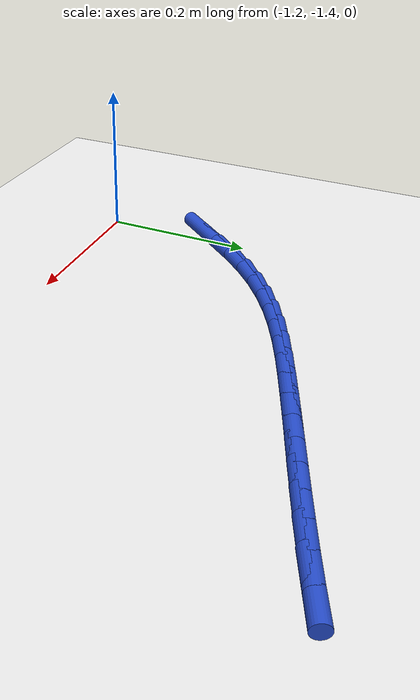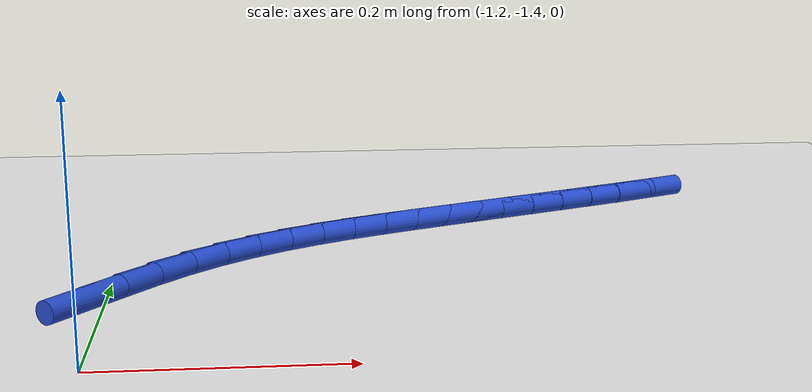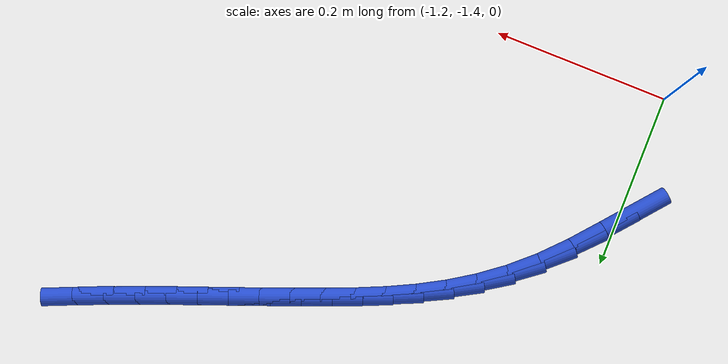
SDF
<sdf version="1.6">
 <world name="default">
  <model name="ground_plane">
   <static>1</static>
   <link name="link">
    <collision name="collision">
     <geometry><plane><normal>0 0 1</normal><size>100 100</size></plane></geometry>
     <surface><friction><ode><mu>100</mu><mu2>50</mu2></ode></friction></surface>
    </collision>
    <visual name="visual">
     <cast_shadows>0</cast_shadows>
     <geometry><plane><normal>0 0 1</normal><size>100 100</size></plane></geometry>
     <material>
      <script><uri>file://media/materials/scripts/gazebo.material</uri><name>Gazebo/WhiteGlow</name></script>
     </material>
    </visual>
   </link>
  </model>
  <model name="line">
   <link name="link_166">
    <pose>-1.2140022616418102 -1.2667199999286067 0.01 0 1.57 0.8853947982379706</pose>
    <collision name="collision">
     <geometry><cylinder><radius>0.01</radius><length>0.08</length></cylinder></geometry>
    </collision>
    <visual name="visual">
     <material>
      <script><name>Gazebo/Blue</name><uri>file://media/materials/scripts/gazebo.material</uri></script>
     </material>
     <geometry><cylinder><radius>0.01</radius><length>0.08</length></cylinder></geometry>
    </visual>
   </link>
   <link name="link_167">
    <pose>-1.1888454822438321 -1.235952240339306 0.01 0 1.57 0.8763174824492425</pose>
    <collision name="collision">
     <geometry><cylinder><radius>0.01</radius><length>0.08</length></cylinder></geometry>
    </collision>
    <visual name="visual">
     <material>
      <script><name>Gazebo/Blue</name><uri>file://media/materials/scripts/gazebo.material</uri></script>
     </material>
     <geometry><cylinder><radius>0.01</radius><length>0.08</length></cylinder></geometry>
    </visual>
   </link>
   <link name="link_168">
    <pose>-1.1630428880034756 -1.204972788767967 0.01 0 1.57 0.8236120390936726</pose>
    <collision name="collision">
     <geometry><cylinder><radius>0.01</radius><length>0.08</length></cylinder></geometry>
    </collision>
    <visual name="visual">
     <material>
      <script><name>Gazebo/Blue</name><uri>file://media/materials/scripts/gazebo.material</uri></script>
     </material>
     <geometry><cylinder><radius>0.01</radius><length>0.08</length></cylinder></geometry>
    </visual>
   </link>
   <link name="link_169">
    <pose>-1.1364889005108554 -1.1763076361749984 0.01 0 1.57 0.7419146138091145</pose>
    <collision name="collision">
     <geometry><cylinder><radius>0.01</radius><length>0.08</length></cylinder></geometry>
    </collision>
    <visual name="visual">
     <material>
      <script><name>Gazebo/Blue</name><uri>file://media/materials/scripts/gazebo.material</uri></script>
     </material>
     <geometry><cylinder><radius>0.01</radius><length>0.08</length></cylinder></geometry>
    </visual>
   </link>
   <link name="link_170">
    <pose>-1.109147253812339 -1.1512461030214207 0.01 0 1.57 0.6608980478980852</pose>
    <collision name="collision">
     <geometry><cylinder><radius>0.01</radius><length>0.08</length></cylinder></geometry>
    </collision>
    <visual name="visual">
     <material>
      <script><name>Gazebo/Blue</name><uri>file://media/materials/scripts/gazebo.material</uri></script>
     </material>
     <geometry><cylinder><radius>0.01</radius><length>0.08</length></cylinder></geometry>
    </visual>
   </link>
   <link name="link_171">
    <pose>-1.0810746706113463 -1.1294184092951491 0.01 0 1.57 0.5860679000529868</pose>
    <collision name="collision">
     <geometry><cylinder><radius>0.01</radius><length>0.08</length></cylinder></geometry>
    </collision>
    <visual name="visual">
     <material>
      <script><name>Gazebo/Blue</name><uri>file://media/materials/scripts/gazebo.material</uri></script>
     </material>
     <geometry><cylinder><radius>0.01</radius><length>0.08</length></cylinder></geometry>
    </visual>
   </link>
   <link name="link_172">
    <pose>-1.0523343940074121 -1.110338438297233 0.01 0 1.57 0.5204283445614308</pose>
    <collision name="collision">
     <geometry><cylinder><radius>0.01</radius><length>0.08</length></cylinder></geometry>
    </collision>
    <visual name="visual">
     <material>
      <script><name>Gazebo/Blue</name><uri>file://media/materials/scripts/gazebo.material</uri></script>
     </material>
     <geometry><cylinder><radius>0.01</radius><length>0.08</length></cylinder></geometry>
    </visual>
   </link>
   <link name="link_173">
    <pose>-1.0229896671000716 -1.093520073328721 0.01 0 1.57 0.4663184286745634</pose>
    <collision name="collision">
     <geometry><cylinder><radius>0.01</radius><length>0.08</length></cylinder></geometry>
    </collision>
    <visual name="visual">
     <material>
      <script><name>Gazebo/Blue</name><uri>file://media/materials/scripts/gazebo.material</uri></script>
     </material>
     <geometry><cylinder><radius>0.01</radius><length>0.08</length></cylinder></geometry>
    </visual>
   </link>
   <link name="link_174">
    <pose>-0.9931037329888611 -1.0784771976906622 0.01 0 1.57 0.42530922916286074</pose>
    <collision name="collision">
     <geometry><cylinder><radius>0.01</radius><length>0.08</length></cylinder></geometry>
    </collision>
    <visual name="visual">
     <material>
      <script><name>Gazebo/Blue</name><uri>file://media/materials/scripts/gazebo.material</uri></script>
     </material>
     <geometry><cylinder><radius>0.01</radius><length>0.08</length></cylinder></geometry>
    </visual>
   </link>
   <link name="link_175">
    <pose>-0.9627398347733147 -1.064723694684105 0.01 0 1.57 0.39826930732990257</pose>
    <collision name="collision">
     <geometry><cylinder><radius>0.01</radius><length>0.08</length></cylinder></geometry>
    </collision>
    <visual name="visual">
     <material>
      <script><name>Gazebo/Blue</name><uri>file://media/materials/scripts/gazebo.material</uri></script>
     </material>
     <geometry><cylinder><radius>0.01</radius><length>0.08</length></cylinder></geometry>
    </visual>
   </link>
   <link name="link_176">
    <pose>-0.9319612155529684 -1.0517734476100993 0.01 0 1.57 0.38472075949433665</pose>
    <collision name="collision">
     <geometry><cylinder><radius>0.01</radius><length>0.08</length></cylinder></geometry>
    </collision>
    <visual name="visual">
     <material>
      <script><name>Gazebo/Blue</name><uri>file://media/materials/scripts/gazebo.material</uri></script>
     </material>
     <geometry><cylinder><radius>0.01</radius><length>0.08</length></cylinder></geometry>
    </visual>
   </link>
   <link name="link_177">
    <pose>-0.9008310707916377 -1.0391689463942764 0.01 0 1.57 0.3777973892482894</pose>
    <collision name="collision">
     <geometry><cylinder><radius>0.01</radius><length>0.08</length></cylinder></geometry>
    </collision>
    <visual name="visual">
     <material>
      <script><name>Gazebo/Blue</name><uri>file://media/materials/scripts/gazebo.material</uri></script>
     </material>
     <geometry><cylinder><radius>0.01</radius><length>0.08</length></cylinder></geometry>
    </visual>
   </link>
   <link name="link_178">
    <pose>-0.8694121840900965 -1.02670001660948 0.01 0 1.57 0.3739199092124492</pose>
    <collision name="collision">
     <geometry><cylinder><radius>0.01</radius><length>0.08</length></cylinder></geometry>
    </collision>
    <visual name="visual">
     <material>
      <script><name>Gazebo/Blue</name><uri>file://media/materials/scripts/gazebo.material</uri></script>
     </material>
     <geometry><cylinder><radius>0.01</radius><length>0.08</length></cylinder></geometry>
    </visual>
   </link>
   <link name="link_179">
    <pose>-0.8377671281410657 -1.0142831402053145 0.01 0 1.57 0.37299999585043186</pose>
    <collision name="collision">
     <geometry><cylinder><radius>0.01</radius><length>0.08</length></cylinder></geometry>
    </collision>
    <visual name="visual">
     <material>
      <script><name>Gazebo/Blue</name><uri>file://media/materials/scripts/gazebo.material</uri></script>
     </material>
     <geometry><cylinder><radius>0.01</radius><length>0.08</length></cylinder></geometry>
    </visual>
   </link>
   <link name="link_180">
    <pose>-0.805958473928473 -1.0018358253093311 0.01 0 1.57 0.3749931240493986</pose>
    <collision name="collision">
     <geometry><cylinder><radius>0.01</radius><length>0.08</length></cylinder></geometry>
    </collision>
    <visual name="visual">
     <material>
      <script><name>Gazebo/Blue</name><uri>file://media/materials/scripts/gazebo.material</uri></script>
     </material>
     <geometry><cylinder><radius>0.01</radius><length>0.08</length></cylinder></geometry>
    </visual>
   </link>
   <link name="link_181">
    <pose>-0.7740487924362464 -0.9892755800490804 0.01 0 1.57 0.3798697412873353</pose>
    <collision name="collision">
     <geometry><cylinder><radius>0.01</radius><length>0.08</length></cylinder></geometry>
    </collision>
    <visual name="visual">
     <material>
      <script><name>Gazebo/Blue</name><uri>file://media/materials/scripts/gazebo.material</uri></script>
     </material>
     <geometry><cylinder><radius>0.01</radius><length>0.08</length></cylinder></geometry>
    </visual>
   </link>
   <link name="link_182">
    <pose>-0.7421006546483135 -0.9765199125521131 0.01 0 1.57 0.3876142393908622</pose>
    <collision name="collision">
     <geometry><cylinder><radius>0.01</radius><length>0.08</length></cylinder></geometry>
    </collision>
    <visual name="visual">
     <material>
      <script><name>Gazebo/Blue</name><uri>file://media/materials/scripts/gazebo.material</uri></script>
     </material>
     <geometry><cylinder><radius>0.01</radius><length>0.08</length></cylinder></geometry>
    </visual>
   </link>
   <link name="link_183">
    <pose>-0.7101766315486048 -0.9634863309459808 0.01 0 1.57 0.3982234050593957</pose>
    <collision name="collision">
     <geometry><cylinder><radius>0.01</radius><length>0.08</length></cylinder></geometry>
    </collision>
    <visual name="visual">
     <material>
      <script><name>Gazebo/Blue</name><uri>file://media/materials/scripts/gazebo.material</uri></script>
     </material>
     <geometry><cylinder><radius>0.01</radius><length>0.08</length></cylinder></geometry>
    </visual>
   </link>
   <link name="link_184">
    <pose>-0.6783392941210477 -0.9500923433582343 0.01 0 1.57 0.4117043293007781</pose>
    <collision name="collision">
     <geometry><cylinder><radius>0.01</radius><length>0.08</length></cylinder></geometry>
    </collision>
    <visual name="visual">
     <material>
      <script><name>Gazebo/Blue</name><uri>file://media/materials/scripts/gazebo.material</uri></script>
     </material>
     <geometry><cylinder><radius>0.01</radius><length>0.08</length></cylinder></geometry>
    </visual>
   </link>
  </model>
 </world>
</sdf>
